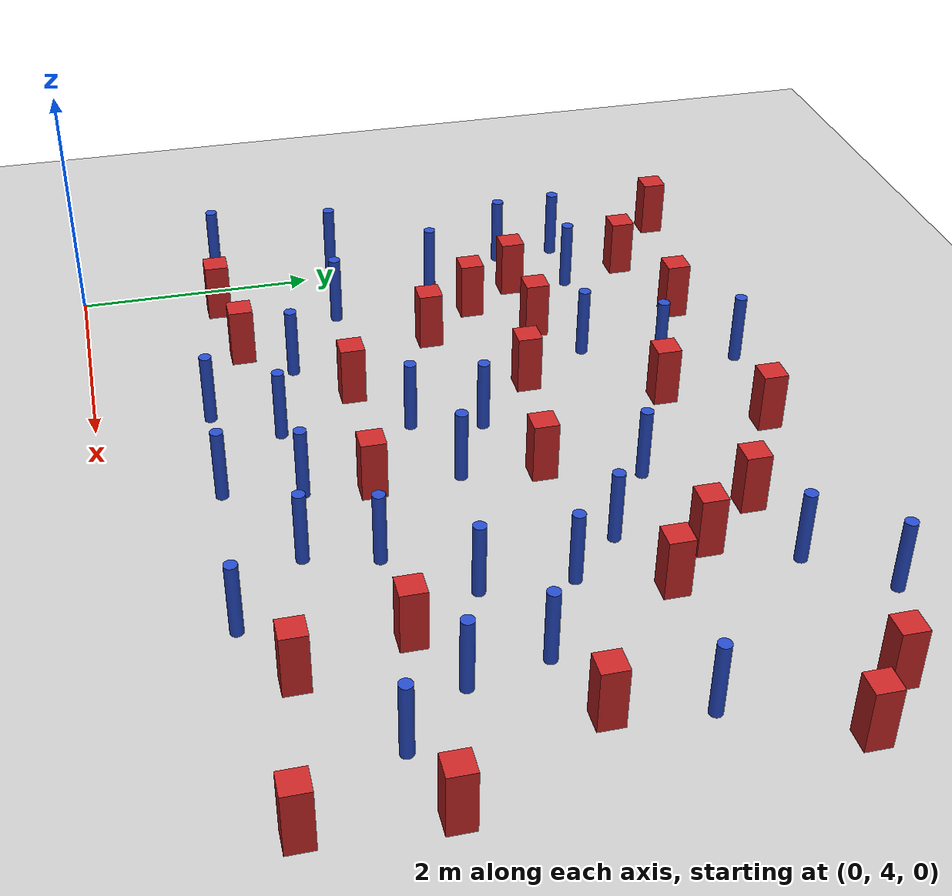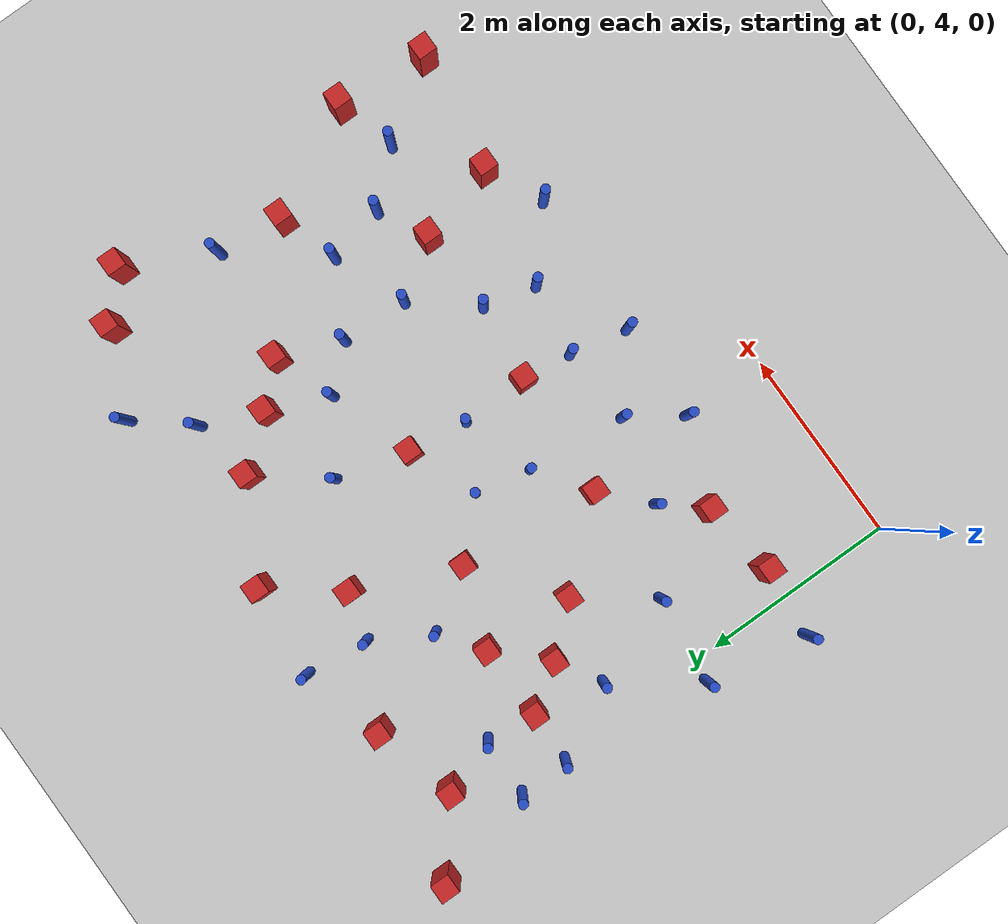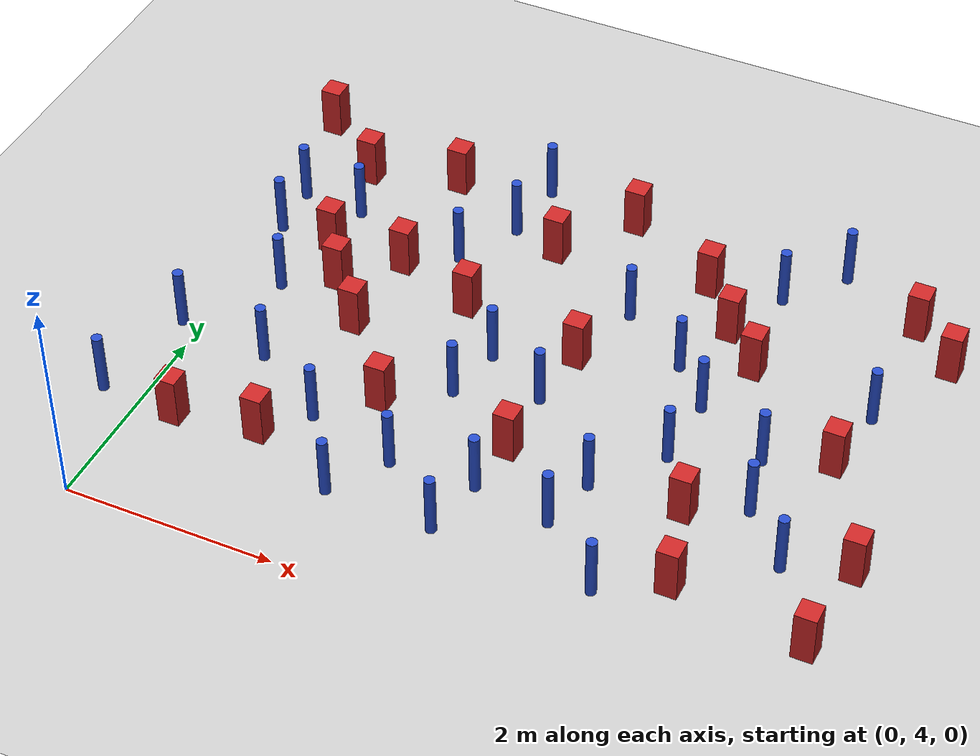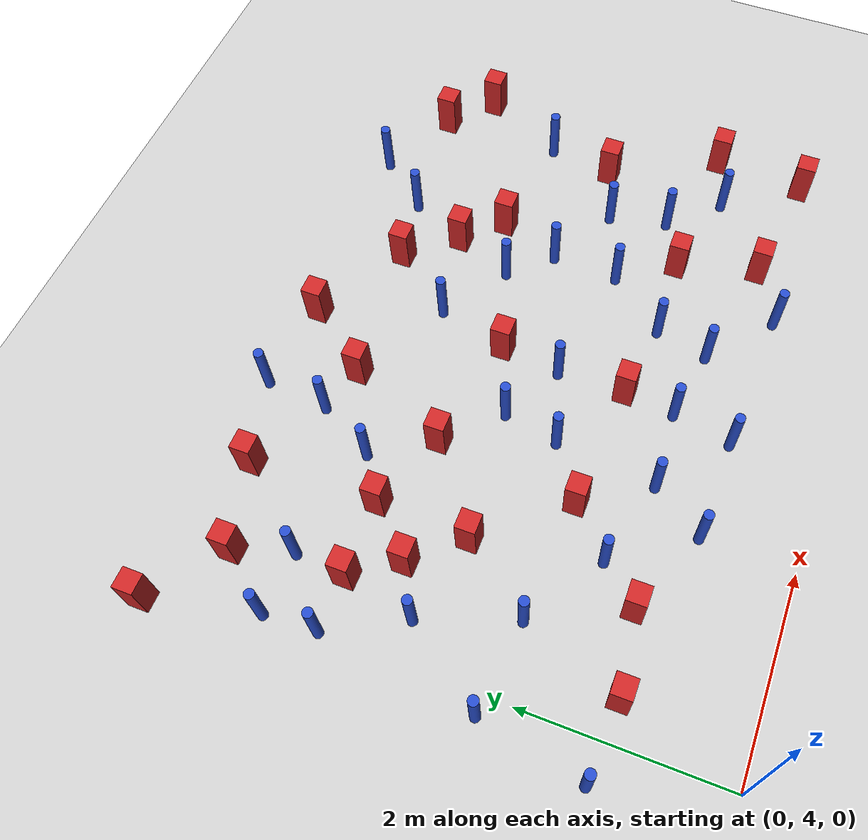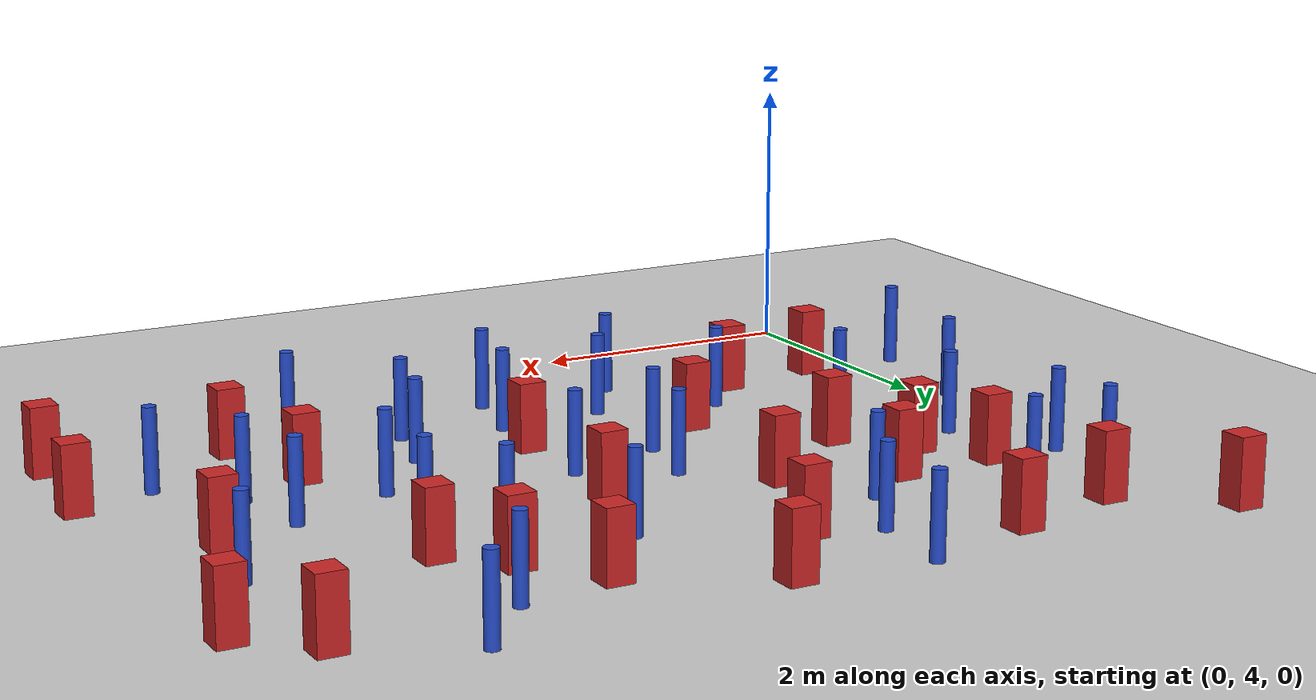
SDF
<sdf version="1.6">
 <world name="default">
  <model name="ground_plane">
   <static>1</static>
   <link name="link">
    <collision name="collision">
     <geometry><plane><normal>0 0 1</normal><size>100 100</size></plane></geometry>
     <surface><friction><ode><mu>100</mu><mu2>50</mu2></ode></friction></surface>
    </collision>
    <visual name="visual">
     <cast_shadows>0</cast_shadows>
     <geometry><plane><normal>0 0 1</normal><size>100 100</size></plane></geometry>
     <material>
      <ambient>1.0 1.0 1.0 1.0</ambient>
      <diffuse>0.8 0.8 0.8 1.0</diffuse>
      <specular>0.01 0.01 0.01 1.000000</specular>
     </material>
    </visual>
   </link>
  </model>
  <model name="square_post_obstacle15">
   <static>true</static>
   <pose>0.376676240564 5.16645294007 -6.11067671241e-07 -5.50515727128e-06 -8.79689657224e-07 2.37013304536e-05</pose>
   <link name="link">
    <pose>0 0 0.25 0 -0 0</pose>
    <inertial>
     <mass>100</mass>
     <inertia>
      <ixx>0.166667</ixx>
      <ixy>0</ixy>
      <ixz>0</ixz>
      <iyy>0.166667</iyy>
      <iyz>0</iyz>
      <izz>0.166667</izz>
     </inertia>
    </inertial>
    <collision name="collision"><geometry><box><size>.2 .2 .5</size></box></geometry></collision>
    <visual name="visual">
     <geometry><box><size>.2 .2 .5</size></box></geometry>
     <material>
      <script><name>Gazebo/Red</name><uri>file://media/materials/scripts/gazebo.material</uri></script>
     </material>
    </visual>
   </link>
  </model>
  <model name="pole_obstacle17">
   <static>true</static>
   <pose>2.04898623751 8.7162139419 -9.4761961606e-06 5.49618799729e-07 2.36310414007e-07 -1.5509053482e-07</pose>
   <link name="link">
    <pose>0 0 0.3 0 -0 0</pose>
    <inertial>
     <mass>1</mass>
     <inertia><ixx>0.145833</ixx><ixy>0</ixy><ixz>0</ixz><iyy>0.145833</iyy><iyz>0</iyz><izz>0.125</izz></inertia>
    </inertial>
    <collision name="collision">
     <geometry><cylinder><radius>0.05</radius><length>.6</length></cylinder></geometry>
    </collision>
    <visual name="visual">
     <geometry><cylinder><radius>0.05</radius><length>.6</length></cylinder></geometry>
     <material>
      <script><name>Gazebo/Blue</name><uri>file://media/materials/scripts/gazebo.material</uri></script>
     </material>
    </visual>
   </link>
  </model>
  <model name="square_post_obstacle27">
   <static>true</static>
   <pose>1.27030081511 9.11007338027 -6.11067671241e-07 -5.50515727128e-06 -8.79689657224e-07 2.37013304536e-05</pose>
   <link name="link">
    <pose>0 0 0.25 0 -0 0</pose>
    <inertial>
     <mass>100</mass>
     <inertia>
      <ixx>0.166667</ixx>
      <ixy>0</ixy>
      <ixz>0</ixz>
      <iyy>0.166667</iyy>
      <iyz>0</iyz>
      <izz>0.166667</izz>
     </inertia>
    </inertial>
    <collision name="collision"><geometry><box><size>.2 .2 .5</size></box></geometry></collision>
    <visual name="visual">
     <geometry><box><size>.2 .2 .5</size></box></geometry>
     <material>
      <script><name>Gazebo/Red</name><uri>file://media/materials/scripts/gazebo.material</uri></script>
     </material>
    </visual>
   </link>
  </model>
  <model name="pole_obstacle25">
   <static>true</static>
   <pose>4.18027340639 7.61826991647 -9.47619616065e-06 5.49618799737e-07 2.36310414037e-07 -1.55090534814e-07</pose>
   <link name="link">
    <pose>0 0 0.3 0 -0 0</pose>
    <inertial>
     <mass>1</mass>
     <inertia><ixx>0.145833</ixx><ixy>0</ixy><ixz>0</ixz><iyy>0.145833</iyy><iyz>0</iyz><izz>0.125</izz></inertia>
    </inertial>
    <collision name="collision">
     <geometry><cylinder><radius>0.05</radius><length>.6</length></cylinder></geometry>
    </collision>
    <visual name="visual">
     <geometry><cylinder><radius>0.05</radius><length>.6</length></cylinder></geometry>
     <material>
      <script><name>Gazebo/Blue</name><uri>file://media/materials/scripts/gazebo.material</uri></script>
     </material>
    </visual>
   </link>
  </model>
  <model name="pole_obstacle26">
   <static>true</static>
   <pose>3.16374248313 5.49320717456 -9.47619616065e-06 5.49618799738e-07 2.3631041406e-07 -1.55090534801e-07</pose>
   <link name="link">
    <pose>0 0 0.3 0 -0 0</pose>
    <inertial>
     <mass>1</mass>
     <inertia><ixx>0.145833</ixx><ixy>0</ixy><ixz>0</ixz><iyy>0.145833</iyy><iyz>0</iyz><izz>0.125</izz></inertia>
    </inertial>
    <collision name="collision">
     <geometry><cylinder><radius>0.05</radius><length>.6</length></cylinder></geometry>
    </collision>
    <visual name="visual">
     <geometry><cylinder><radius>0.05</radius><length>.6</length></cylinder></geometry>
     <material>
      <script><name>Gazebo/Blue</name><uri>file://media/materials/scripts/gazebo.material</uri></script>
     </material>
    </visual>
   </link>
  </model>
  <model name="pole_obstacle36">
   <static>true</static>
   <pose>4.52407594604 6.51466921869 -9.47619616065e-06 5.49618799737e-07 2.36310414037e-07 -1.55090534814e-07</pose>
   <link name="link">
    <pose>0 0 0.3 0 -0 0</pose>
    <inertial>
     <mass>1</mass>
     <inertia><ixx>0.145833</ixx><ixy>0</ixy><ixz>0</ixz><iyy>0.145833</iyy><iyz>0</iyz><izz>0.125</izz></inertia>
    </inertial>
    <collision name="collision">
     <geometry><cylinder><radius>0.05</radius><length>.6</length></cylinder></geometry>
    </collision>
    <visual name="visual">
     <geometry><cylinder><radius>0.05</radius><length>.6</length></cylinder></geometry>
     <material>
      <script><name>Gazebo/Blue</name><uri>file://media/materials/scripts/gazebo.material</uri></script>
     </material>
    </visual>
   </link>
  </model>
  <model name="pole_obstacle39">
   <static>true</static>
   <pose>0.392476861966 7.08885931811 -9.47619616065e-06 5.49618799737e-07 2.36310414065e-07 -1.55090534796e-07</pose>
   <link name="link">
    <pose>0 0 0.3 0 -0 0</pose>
    <inertial>
     <mass>1</mass>
     <inertia><ixx>0.145833</ixx><ixy>0</ixy><ixz>0</ixz><iyy>0.145833</iyy><iyz>0</iyz><izz>0.125</izz></inertia>
    </inertial>
    <collision name="collision">
     <geometry><cylinder><radius>0.05</radius><length>.6</length></cylinder></geometry>
    </collision>
    <visual name="visual">
     <geometry><cylinder><radius>0.05</radius><length>.6</length></cylinder></geometry>
     <material>
      <script><name>Gazebo/Blue</name><uri>file://media/materials/scripts/gazebo.material</uri></script>
     </material>
    </visual>
   </link>
  </model>
  <model name="pole_obstacle47">
   <static>true</static>
   <pose>4.54593493331 4.82354056204 -9.47619616065e-06 5.49618799737e-07 2.36310414037e-07 -1.55090534814e-07</pose>
   <link name="link">
    <pose>0 0 0.3 0 -0 0</pose>
    <inertial>
     <mass>1</mass>
     <inertia><ixx>0.145833</ixx><ixy>0</ixy><ixz>0</ixz><iyy>0.145833</iyy><iyz>0</iyz><izz>0.125</izz></inertia>
    </inertial>
    <collision name="collision">
     <geometry><cylinder><radius>0.05</radius><length>.6</length></cylinder></geometry>
    </collision>
    <visual name="visual">
     <geometry><cylinder><radius>0.05</radius><length>.6</length></cylinder></geometry>
     <material>
      <script><name>Gazebo/Blue</name><uri>file://media/materials/scripts/gazebo.material</uri></script>
     </material>
    </visual>
   </link>
  </model>
  <model name="pole_obstacle48">
   <static>true</static>
   <pose>4.70044250642 8.84747709764 -9.47619616065e-06 5.49618799737e-07 2.36310414065e-07 -1.55090534796e-07</pose>
   <link name="link">
    <pose>0 0 0.3 0 -0 0</pose>
    <inertial>
     <mass>1</mass>
     <inertia><ixx>0.145833</ixx><ixy>0</ixy><ixz>0</ixz><iyy>0.145833</iyy><iyz>0</iyz><izz>0.125</izz></inertia>
    </inertial>
    <collision name="collision">
     <geometry><cylinder><radius>0.05</radius><length>.6</length></cylinder></geometry>
    </collision>
    <visual name="visual">
     <geometry><cylinder><radius>0.05</radius><length>.6</length></cylinder></geometry>
     <material>
      <script><name>Gazebo/Blue</name><uri>file://media/materials/scripts/gazebo.material</uri></script>
     </material>
    </visual>
   </link>
  </model>
  <model name="square_post_obstacle59">
   <static>true</static>
   <pose>0.415309586257 8.87681084428 -6.11067671241e-07 -5.50515727128e-06 -8.79689657224e-07 2.37013304536e-05</pose>
   <link name="link">
    <pose>0 0 0.25 0 -0 0</pose>
    <inertial>
     <mass>100</mass>
     <inertia>
      <ixx>0.166667</ixx>
      <ixy>0</ixy>
      <ixz>0</ixz>
      <iyy>0.166667</iyy>
      <iyz>0</iyz>
      <izz>0.166667</izz>
     </inertia>
    </inertial>
    <collision name="collision"><geometry><box><size>.2 .2 .5</size></box></geometry></collision>
    <visual name="visual">
     <geometry><box><size>.2 .2 .5</size></box></geometry>
     <material>
      <script><name>Gazebo/Red</name><uri>file://media/materials/scripts/gazebo.material</uri></script>
     </material>
    </visual>
   </link>
  </model>
  <model name="square_post_obstacle62">
   <static>true</static>
   <pose>4.42375648086 8.22661889013 -6.11067671241e-07 -5.50515727128e-06 -8.79689657224e-07 2.37013304536e-05</pose>
   <link name="link">
    <pose>0 0 0.25 0 -0 0</pose>
    <inertial>
     <mass>100</mass>
     <inertia>
      <ixx>0.166667</ixx>
      <ixy>0</ixy>
      <ixz>0</ixz>
      <iyy>0.166667</iyy>
      <iyz>0</iyz>
      <izz>0.166667</izz>
     </inertia>
    </inertial>
    <collision name="collision"><geometry><box><size>.2 .2 .5</size></box></geometry></collision>
    <visual name="visual">
     <geometry><box><size>.2 .2 .5</size></box></geometry>
     <material>
      <script><name>Gazebo/Red</name><uri>file://media/materials/scripts/gazebo.material</uri></script>
     </material>
    </visual>
   </link>
  </model>
  <model name="square_post_obstacle66">
   <static>true</static>
   <pose>5.86790818103 7.01417542503 -6.11067671241e-07 -5.50515727128e-06 -8.79689657224e-07 2.37013304536e-05</pose>
   <link name="link">
    <pose>0 0 0.25 0 -0 0</pose>
    <inertial>
     <mass>100</mass>
     <inertia>
      <ixx>0.166667</ixx>
      <ixy>0</ixy>
      <ixz>0</ixz>
      <iyy>0.166667</iyy>
      <iyz>0</iyz>
      <izz>0.166667</izz>
     </inertia>
    </inertial>
    <collision name="collision"><geometry><box><size>.2 .2 .5</size></box></geometry></collision>
    <visual name="visual">
     <geometry><box><size>.2 .2 .5</size></box></geometry>
     <material>
      <script><name>Gazebo/Red</name><uri>file://media/materials/scripts/gazebo.material</uri></script>
     </material>
    </visual>
   </link>
  </model>
  <model name="square_post_obstacle73">
   <static>true</static>
   <pose>3.06616050105 9.25791936694 -6.11067671241e-07 -5.50515727128e-06 -8.79689657224e-07 2.37013304536e-05</pose>
   <link name="link">
    <pose>0 0 0.25 0 -0 0</pose>
    <inertial>
     <mass>100</mass>
     <inertia>
      <ixx>0.166667</ixx>
      <ixy>0</ixy>
      <ixz>0</ixz>
      <iyy>0.166667</iyy>
      <iyz>0</iyz>
      <izz>0.166667</izz>
     </inertia>
    </inertial>
    <collision name="collision"><geometry><box><size>.2 .2 .5</size></box></geometry></collision>
    <visual name="visual">
     <geometry><box><size>.2 .2 .5</size></box></geometry>
     <material>
      <script><name>Gazebo/Red</name><uri>file://media/materials/scripts/gazebo.material</uri></script>
     </material>
    </visual>
   </link>
  </model>
  <model name="square_post_obstacle75">
   <static>true</static>
   <pose>1.3078661224 7.81738381087 -6.11067671241e-07 -5.50515727128e-06 -8.79689657224e-07 2.37013304536e-05</pose>
   <link name="link">
    <pose>0 0 0.25 0 -0 0</pose>
    <inertial>
     <mass>100</mass>
     <inertia>
      <ixx>0.166667</ixx>
      <ixy>0</ixy>
      <ixz>0</ixz>
      <iyy>0.166667</iyy>
      <iyz>0</iyz>
      <izz>0.166667</izz>
     </inertia>
    </inertial>
    <collision name="collision"><geometry><box><size>.2 .2 .5</size></box></geometry></collision>
    <visual name="visual">
     <geometry><box><size>.2 .2 .5</size></box></geometry>
     <material>
      <script><name>Gazebo/Red</name><uri>file://media/materials/scripts/gazebo.material</uri></script>
     </material>
    </visual>
   </link>
  </model>
  <model name="square_post_obstacle78">
   <static>true</static>
   <pose>2.10274140308 7.52908039276 -6.11067671241e-07 -5.50515727128e-06 -8.79689657224e-07 2.37013304536e-05</pose>
   <link name="link">
    <pose>0 0 0.25 0 -0 0</pose>
    <inertial>
     <mass>100</mass>
     <inertia>
      <ixx>0.166667</ixx>
      <ixy>0</ixy>
      <ixz>0</ixz>
      <iyy>0.166667</iyy>
      <iyz>0</iyz>
      <izz>0.166667</izz>
     </inertia>
    </inertial>
    <collision name="collision"><geometry><box><size>.2 .2 .5</size></box></geometry></collision>
    <visual name="visual">
     <geometry><box><size>.2 .2 .5</size></box></geometry>
     <material>
      <script><name>Gazebo/Red</name><uri>file://media/materials/scripts/gazebo.material</uri></script>
     </material>
    </visual>
   </link>
  </model>
  <model name="pole_obstacle91">
   <static>true</static>
   <pose>1.49296255642 5.66907580595 -9.47619616065e-06 5.49618799737e-07 2.36310414061e-07 -1.550905348e-07</pose>
   <link name="link">
    <pose>0 0 0.3 0 -0 0</pose>
    <inertial>
     <mass>1</mass>
     <inertia><ixx>0.145833</ixx><ixy>0</ixy><ixz>0</ixz><iyy>0.145833</iyy><iyz>0</iyz><izz>0.125</izz></inertia>
    </inertial>
    <collision name="collision">
     <geometry><cylinder><radius>0.05</radius><length>.6</length></cylinder></geometry>
    </collision>
    <visual name="visual">
     <geometry><cylinder><radius>0.05</radius><length>.6</length></cylinder></geometry>
     <material>
      <script><name>Gazebo/Blue</name><uri>file://media/materials/scripts/gazebo.material</uri></script>
     </material>
    </visual>
   </link>
  </model>
  <model name="square_post_obstacle86">
   <static>true</static>
   <pose>1.26658289816 6.88722565381 -6.11067671241e-07 -5.50515727128e-06 -8.79689657224e-07 2.37013304536e-05</pose>
   <link name="link">
    <pose>0 0 0.25 0 -0 0</pose>
    <inertial>
     <mass>100</mass>
     <inertia>
      <ixx>0.166667</ixx>
      <ixy>0</ixy>
      <ixz>0</ixz>
      <iyy>0.166667</iyy>
      <iyz>0</iyz>
      <izz>0.166667</izz>
     </inertia>
    </inertial>
    <collision name="collision"><geometry><box><size>.2 .2 .5</size></box></geometry></collision>
    <visual name="visual">
     <geometry><box><size>.2 .2 .5</size></box></geometry>
     <material>
      <script><name>Gazebo/Red</name><uri>file://media/materials/scripts/gazebo.material</uri></script>
     </material>
    </visual>
   </link>
  </model>
  <model name="pole_obstacle102">
   <static>true</static>
   <pose>0.725159996272 6.16797189275 -9.47619616065e-06 5.49618799737e-07 2.36310414065e-07 -1.55090534796e-07</pose>
   <link name="link">
    <pose>0 0 0.3 0 -0 0</pose>
    <inertial>
     <mass>1</mass>
     <inertia><ixx>0.145833</ixx><ixy>0</ixy><ixz>0</ixz><iyy>0.145833</iyy><iyz>0</iyz><izz>0.125</izz></inertia>
    </inertial>
    <collision name="collision">
     <geometry><cylinder><radius>0.05</radius><length>.6</length></cylinder></geometry>
    </collision>
    <visual name="visual">
     <geometry><cylinder><radius>0.05</radius><length>.6</length></cylinder></geometry>
     <material>
      <script><name>Gazebo/Blue</name><uri>file://media/materials/scripts/gazebo.material</uri></script>
     </material>
    </visual>
   </link>
  </model>
  <model name="pole_obstacle103">
   <static>true</static>
   <pose>3.90636634134 5.37039415428 -9.47619616065e-06 5.49618799738e-07 2.3631041406e-07 -1.55090534801e-07</pose>
   <link name="link">
    <pose>0 0 0.3 0 -0 0</pose>
    <inertial>
     <mass>1</mass>
     <inertia><ixx>0.145833</ixx><ixy>0</ixy><ixz>0</ixz><iyy>0.145833</iyy><iyz>0</iyz><izz>0.125</izz></inertia>
    </inertial>
    <collision name="collision">
     <geometry><cylinder><radius>0.05</radius><length>.6</length></cylinder></geometry>
    </collision>
    <visual name="visual">
     <geometry><cylinder><radius>0.05</radius><length>.6</length></cylinder></geometry>
     <material>
      <script><name>Gazebo/Blue</name><uri>file://media/materials/scripts/gazebo.material</uri></script>
     </material>
    </visual>
   </link>
  </model>
  <model name="pole_obstacle106">
   <static>true</static>
   <pose>5.97284830804 7.7079123222 -9.47619616065e-06 5.49618799737e-07 2.36310414037e-07 -1.55090534814e-07</pose>
   <link name="link">
    <pose>0 0 0.3 0 -0 0</pose>
    <inertial>
     <mass>1</mass>
     <inertia><ixx>0.145833</ixx><ixy>0</ixy><ixz>0</ixz><iyy>0.145833</iyy><iyz>0</iyz><izz>0.125</izz></inertia>
    </inertial>
    <collision name="collision">
     <geometry><cylinder><radius>0.05</radius><length>.6</length></cylinder></geometry>
    </collision>
    <visual name="visual">
     <geometry><cylinder><radius>0.05</radius><length>.6</length></cylinder></geometry>
     <material>
      <script><name>Gazebo/Blue</name><uri>file://media/materials/scripts/gazebo.material</uri></script>
     </material>
    </visual>
   </link>
  </model>
  <model name="square_post_obstacle97">
   <static>true</static>
   <pose>6.40246230782 8.57723047443 -6.11067671241e-07 -5.50515727128e-06 -8.79689657224e-07 2.37013304536e-05</pose>
   <link name="link">
    <pose>0 0 0.25 0 -0 0</pose>
    <inertial>
     <mass>100</mass>
     <inertia>
      <ixx>0.166667</ixx>
      <ixy>0</ixy>
      <ixz>0</ixz>
      <iyy>0.166667</iyy>
      <iyz>0</iyz>
      <izz>0.166667</izz>
     </inertia>
    </inertial>
    <collision name="collision"><geometry><box><size>.2 .2 .5</size></box></geometry></collision>
    <visual name="visual">
     <geometry><box><size>.2 .2 .5</size></box></geometry>
     <material>
      <script><name>Gazebo/Red</name><uri>file://media/materials/scripts/gazebo.material</uri></script>
     </material>
    </visual>
   </link>
  </model>
  <model name="pole_obstacle110">
   <static>true</static>
   <pose>1.72555358135 8.12874197238 -9.47619616065e-06 5.49618799737e-07 2.36310414046e-07 -1.55090534809e-07</pose>
   <link name="link">
    <pose>0 0 0.3 0 -0 0</pose>
    <inertial>
     <mass>1</mass>
     <inertia><ixx>0.145833</ixx><ixy>0</ixy><ixz>0</ixz><iyy>0.145833</iyy><iyz>0</iyz><izz>0.125</izz></inertia>
    </inertial>
    <collision name="collision">
     <geometry><cylinder><radius>0.05</radius><length>.6</length></cylinder></geometry>
    </collision>
    <visual name="visual">
     <geometry><cylinder><radius>0.05</radius><length>.6</length></cylinder></geometry>
     <material>
      <script><name>Gazebo/Blue</name><uri>file://media/materials/scripts/gazebo.material</uri></script>
     </material>
    </visual>
   </link>
  </model>
  <model name="pole_obstacle116">
   <static>true</static>
   <pose>2.47612854099 6.467197018 -9.47619616065e-06 5.49618799738e-07 2.3631041406e-07 -1.55090534801e-07</pose>
   <link name="link">
    <pose>0 0 0.3 0 -0 0</pose>
    <inertial>
     <mass>1</mass>
     <inertia><ixx>0.145833</ixx><ixy>0</ixy><ixz>0</ixz><iyy>0.145833</iyy><iyz>0</iyz><izz>0.125</izz></inertia>
    </inertial>
    <collision name="collision">
     <geometry><cylinder><radius>0.05</radius><length>.6</length></cylinder></geometry>
    </collision>
    <visual name="visual">
     <geometry><cylinder><radius>0.05</radius><length>.6</length></cylinder></geometry>
     <material>
      <script><name>Gazebo/Blue</name><uri>file://media/materials/scripts/gazebo.material</uri></script>
     </material>
    </visual>
   </link>
  </model>
  <model name="pole_obstacle117">
   <static>true</static>
   <pose>-0.183160475237 6.26896266439 -9.47619616065e-06 5.49618799738e-07 2.36310414064e-07 -1.55090534799e-07</pose>
   <link name="link">
    <pose>0 0 0.3 0 -0 0</pose>
    <inertial>
     <mass>1</mass>
     <inertia><ixx>0.145833</ixx><ixy>0</ixy><ixz>0</ixz><iyy>0.145833</iyy><iyz>0</iyz><izz>0.125</izz></inertia>
    </inertial>
    <collision name="collision">
     <geometry><cylinder><radius>0.05</radius><length>.6</length></cylinder></geometry>
    </collision>
    <visual name="visual">
     <geometry><cylinder><radius>0.05</radius><length>.6</length></cylinder></geometry>
     <material>
      <script><name>Gazebo/Blue</name><uri>file://media/materials/scripts/gazebo.material</uri></script>
     </material>
    </visual>
   </link>
  </model>
  <model name="square_post_obstacle112">
   <static>true</static>
   <pose>0.556907643015 7.79763329473 -6.11067671241e-07 -5.50515727128e-06 -8.79689657224e-07 2.37013304536e-05</pose>
   <link name="link">
    <pose>0 0 0.25 0 -0 0</pose>
    <inertial>
     <mass>100</mass>
     <inertia>
      <ixx>0.166667</ixx>
      <ixy>0</ixy>
      <ixz>0</ixz>
      <iyy>0.166667</iyy>
      <iyz>0</iyz>
      <izz>0.166667</izz>
     </inertia>
    </inertial>
    <collision name="collision"><geometry><box><size>.2 .2 .5</size></box></geometry></collision>
    <visual name="visual">
     <geometry><box><size>.2 .2 .5</size></box></geometry>
     <material>
      <script><name>Gazebo/Red</name><uri>file://media/materials/scripts/gazebo.material</uri></script>
     </material>
    </visual>
   </link>
  </model>
  <model name="square_post_obstacle114">
   <static>true</static>
   <pose>4.02158834882 8.72413483806 -6.11067671241e-07 -5.50515727128e-06 -8.79689657224e-07 2.37013304536e-05</pose>
   <link name="link">
    <pose>0 0 0.25 0 -0 0</pose>
    <inertial>
     <mass>100</mass>
     <inertia>
      <ixx>0.166667</ixx>
      <ixy>0</ixy>
      <ixz>0</ixz>
      <iyy>0.166667</iyy>
      <iyz>0</iyz>
      <izz>0.166667</izz>
     </inertia>
    </inertial>
    <collision name="collision"><geometry><box><size>.2 .2 .5</size></box></geometry></collision>
    <visual name="visual">
     <geometry><box><size>.2 .2 .5</size></box></geometry>
     <material>
      <script><name>Gazebo/Red</name><uri>file://media/materials/scripts/gazebo.material</uri></script>
     </material>
    </visual>
   </link>
  </model>
  <model name="pole_obstacle135">
   <static>true</static>
   <pose>3.50395691978 8.06282033784 -9.4761961606e-06 5.49618799729e-07 2.36310414e-07 -1.55090534824e-07</pose>
   <link name="link">
    <pose>0 0 0.3 0 -0 0</pose>
    <inertial>
     <mass>1</mass>
     <inertia><ixx>0.145833</ixx><ixy>0</ixy><ixz>0</ixz><iyy>0.145833</iyy><iyz>0</iyz><izz>0.125</izz></inertia>
    </inertial>
    <collision name="collision">
     <geometry><cylinder><radius>0.05</radius><length>.6</length></cylinder></geometry>
    </collision>
    <visual name="visual">
     <geometry><cylinder><radius>0.05</radius><length>.6</length></cylinder></geometry>
     <material>
      <script><name>Gazebo/Blue</name><uri>file://media/materials/scripts/gazebo.material</uri></script>
     </material>
    </visual>
   </link>
  </model>
  <model name="square_post_obstacle123">
   <static>true</static>
   <pose>3.29875991441 7.32074427327 -6.11067671241e-07 -5.50515727128e-06 -8.79689657224e-07 2.37013304536e-05</pose>
   <link name="link">
    <pose>0 0 0.25 0 -0 0</pose>
    <inertial>
     <mass>100</mass>
     <inertia>
      <ixx>0.166667</ixx>
      <ixy>0</ixy>
      <ixz>0</ixz>
      <iyy>0.166667</iyy>
      <iyz>0</iyz>
      <izz>0.166667</izz>
     </inertia>
    </inertial>
    <collision name="collision"><geometry><box><size>.2 .2 .5</size></box></geometry></collision>
    <visual name="visual">
     <geometry><box><size>.2 .2 .5</size></box></geometry>
     <material>
      <script><name>Gazebo/Red</name><uri>file://media/materials/scripts/gazebo.material</uri></script>
     </material>
    </visual>
   </link>
  </model>
  <model name="square_post_obstacle125">
   <static>true</static>
   <pose>4.89404222694 5.95621531816 -6.11067671241e-07 -5.50515727128e-06 -8.79689657224e-07 2.37013304536e-05</pose>
   <link name="link">
    <pose>0 0 0.25 0 -0 0</pose>
    <inertial>
     <mass>100</mass>
     <inertia>
      <ixx>0.166667</ixx>
      <ixy>0</ixy>
      <ixz>0</ixz>
      <iyy>0.166667</iyy>
      <iyz>0</iyz>
      <izz>0.166667</izz>
     </inertia>
    </inertial>
    <collision name="collision"><geometry><box><size>.2 .2 .5</size></box></geometry></collision>
    <visual name="visual">
     <geometry><box><size>.2 .2 .5</size></box></geometry>
     <material>
      <script><name>Gazebo/Red</name><uri>file://media/materials/scripts/gazebo.material</uri></script>
     </material>
    </visual>
   </link>
  </model>
  <model name="square_post_obstacle129">
   <static>true</static>
   <pose>1.16452189136 5.28162440299 -6.11067671241e-07 -5.50515727128e-06 -8.79689657224e-07 2.37013304536e-05</pose>
   <link name="link">
    <pose>0 0 0.25 0 -0 0</pose>
    <inertial>
     <mass>100</mass>
     <inertia>
      <ixx>0.166667</ixx>
      <ixy>0</ixy>
      <ixz>0</ixz>
      <iyy>0.166667</iyy>
      <iyz>0</iyz>
      <izz>0.166667</izz>
     </inertia>
    </inertial>
    <collision name="collision"><geometry><box><size>.2 .2 .5</size></box></geometry></collision>
    <visual name="visual">
     <geometry><box><size>.2 .2 .5</size></box></geometry>
     <material>
      <script><name>Gazebo/Red</name><uri>file://media/materials/scripts/gazebo.material</uri></script>
     </material>
    </visual>
   </link>
  </model>
  <model name="pole_obstacle147">
   <static>true</static>
   <pose>3.04115924577 4.89383703438 -9.47619616065e-06 5.49618799738e-07 2.3631041406e-07 -1.55090534801e-07</pose>
   <link name="link">
    <pose>0 0 0.3 0 -0 0</pose>
    <inertial>
     <mass>1</mass>
     <inertia><ixx>0.145833</ixx><ixy>0</ixy><ixz>0</ixz><iyy>0.145833</iyy><iyz>0</iyz><izz>0.125</izz></inertia>
    </inertial>
    <collision name="collision">
     <geometry><cylinder><radius>0.05</radius><length>.6</length></cylinder></geometry>
    </collision>
    <visual name="visual">
     <geometry><cylinder><radius>0.05</radius><length>.6</length></cylinder></geometry>
     <material>
      <script><name>Gazebo/Blue</name><uri>file://media/materials/scripts/gazebo.material</uri></script>
     </material>
    </visual>
   </link>
  </model>
  <model name="pole_obstacle151">
   <static>true</static>
   <pose>4.55570656747 7.2084754902 -9.47619616065e-06 5.49618799737e-07 2.36310414037e-07 -1.55090534814e-07</pose>
   <link name="link">
    <pose>0 0 0.3 0 -0 0</pose>
    <inertial>
     <mass>1</mass>
     <inertia><ixx>0.145833</ixx><ixy>0</ixy><ixz>0</ixz><iyy>0.145833</iyy><iyz>0</iyz><izz>0.125</izz></inertia>
    </inertial>
    <collision name="collision">
     <geometry><cylinder><radius>0.05</radius><length>.6</length></cylinder></geometry>
    </collision>
    <visual name="visual">
     <geometry><cylinder><radius>0.05</radius><length>.6</length></cylinder></geometry>
     <material>
      <script><name>Gazebo/Blue</name><uri>file://media/materials/scripts/gazebo.material</uri></script>
     </material>
    </visual>
   </link>
  </model>
  <model name="pole_obstacle156">
   <static>true</static>
   <pose>5.14468986267 9.38275630564 -9.47619616065e-06 5.49618799737e-07 2.36310414065e-07 -1.55090534796e-07</pose>
   <link name="link">
    <pose>0 0 0.3 0 -0 0</pose>
    <inertial>
     <mass>1</mass>
     <inertia><ixx>0.145833</ixx><ixy>0</ixy><ixz>0</ixz><iyy>0.145833</iyy><iyz>0</iyz><izz>0.125</izz></inertia>
    </inertial>
    <collision name="collision">
     <geometry><cylinder><radius>0.05</radius><length>.6</length></cylinder></geometry>
    </collision>
    <visual name="visual">
     <geometry><cylinder><radius>0.05</radius><length>.6</length></cylinder></geometry>
     <material>
      <script><name>Gazebo/Blue</name><uri>file://media/materials/scripts/gazebo.material</uri></script>
     </material>
    </visual>
   </link>
  </model>
  <model name="pole_obstacle162">
   <static>true</static>
   <pose>2.01801535871 4.91702935312 -9.47619616065e-06 5.49618799737e-07 2.36310414059e-07 -1.55090534802e-07</pose>
   <link name="link">
    <pose>0 0 0.3 0 -0 0</pose>
    <inertial>
     <mass>1</mass>
     <inertia><ixx>0.145833</ixx><ixy>0</ixy><ixz>0</ixz><iyy>0.145833</iyy><iyz>0</iyz><izz>0.125</izz></inertia>
    </inertial>
    <collision name="collision">
     <geometry><cylinder><radius>0.05</radius><length>.6</length></cylinder></geometry>
    </collision>
    <visual name="visual">
     <geometry><cylinder><radius>0.05</radius><length>.6</length></cylinder></geometry>
     <material>
      <script><name>Gazebo/Blue</name><uri>file://media/materials/scripts/gazebo.material</uri></script>
     </material>
    </visual>
   </link>
  </model>
  <model name="pole_obstacle164">
   <static>true</static>
   <pose>2.59745972514 7.03409092112 -9.47619616065e-06 5.49618799738e-07 2.3631041406e-07 -1.55090534801e-07</pose>
   <link name="link">
    <pose>0 0 0.3 0 -0 0</pose>
    <inertial>
     <mass>1</mass>
     <inertia><ixx>0.145833</ixx><ixy>0</ixy><ixz>0</ixz><iyy>0.145833</iyy><iyz>0</iyz><izz>0.125</izz></inertia>
    </inertial>
    <collision name="collision">
     <geometry><cylinder><radius>0.05</radius><length>.6</length></cylinder></geometry>
    </collision>
    <visual name="visual">
     <geometry><cylinder><radius>0.05</radius><length>.6</length></cylinder></geometry>
     <material>
      <script><name>Gazebo/Blue</name><uri>file://media/materials/scripts/gazebo.material</uri></script>
     </material>
    </visual>
   </link>
  </model>
  <model name="pole_obstacle166">
   <static>true</static>
   <pose>5.27708314897 6.81696112535 -9.47619616065e-06 5.49618799737e-07 2.36310414037e-07 -1.55090534814e-07</pose>
   <link name="link">
    <pose>0 0 0.3 0 -0 0</pose>
    <inertial>
     <mass>1</mass>
     <inertia><ixx>0.145833</ixx><ixy>0</ixy><ixz>0</ixz><iyy>0.145833</iyy><iyz>0</iyz><izz>0.125</izz></inertia>
    </inertial>
    <collision name="collision">
     <geometry><cylinder><radius>0.05</radius><length>.6</length></cylinder></geometry>
    </collision>
    <visual name="visual">
     <geometry><cylinder><radius>0.05</radius><length>.6</length></cylinder></geometry>
     <material>
      <script><name>Gazebo/Blue</name><uri>file://media/materials/scripts/gazebo.material</uri></script>
     </material>
    </visual>
   </link>
  </model>
  <model name="square_post_obstacle163">
   <static>true</static>
   <pose>2.53602129301 8.56776468614 -6.11067671241e-07 -5.50515727128e-06 -8.79689657224e-07 2.37013304536e-05</pose>
   <link name="link">
    <pose>0 0 0.25 0 -0 0</pose>
    <inertial>
     <mass>100</mass>
     <inertia>
      <ixx>0.166667</ixx>
      <ixy>0</ixy>
      <ixz>0</ixz>
      <iyy>0.166667</iyy>
      <iyz>0</iyz>
      <izz>0.166667</izz>
     </inertia>
    </inertial>
    <collision name="collision"><geometry><box><size>.2 .2 .5</size></box></geometry></collision>
    <visual name="visual">
     <geometry><box><size>.2 .2 .5</size></box></geometry>
     <material>
      <script><name>Gazebo/Red</name><uri>file://media/materials/scripts/gazebo.material</uri></script>
     </material>
    </visual>
   </link>
  </model>
  <model name="square_post_obstacle166">
   <static>true</static>
   <pose>6.45187634269 5.90524605147 -6.11067671241e-07 -5.50515727128e-06 -8.79689657224e-07 2.37013304536e-05</pose>
   <link name="link">
    <pose>0 0 0.25 0 -0 0</pose>
    <inertial>
     <mass>100</mass>
     <inertia>
      <ixx>0.166667</ixx>
      <ixy>0</ixy>
      <ixz>0</ixz>
      <iyy>0.166667</iyy>
      <iyz>0</iyz>
      <izz>0.166667</izz>
     </inertia>
    </inertial>
    <collision name="collision"><geometry><box><size>.2 .2 .5</size></box></geometry></collision>
    <visual name="visual">
     <geometry><box><size>.2 .2 .5</size></box></geometry>
     <material>
      <script><name>Gazebo/Red</name><uri>file://media/materials/scripts/gazebo.material</uri></script>
     </material>
    </visual>
   </link>
  </model>
  <model name="pole_obstacle185">
   <static>true</static>
   <pose>-0.384186009066 5.22004636535 -9.47619616065e-06 5.49618799737e-07 2.36310414065e-07 -1.55090534796e-07</pose>
   <link name="link">
    <pose>0 0 0.3 0 -0 0</pose>
    <inertial>
     <mass>1</mass>
     <inertia><ixx>0.145833</ixx><ixy>0</ixy><ixz>0</ixz><iyy>0.145833</iyy><iyz>0</iyz><izz>0.125</izz></inertia>
    </inertial>
    <collision name="collision">
     <geometry><cylinder><radius>0.05</radius><length>.6</length></cylinder></geometry>
    </collision>
    <visual name="visual">
     <geometry><cylinder><radius>0.05</radius><length>.6</length></cylinder></geometry>
     <material>
      <script><name>Gazebo/Blue</name><uri>file://media/materials/scripts/gazebo.material</uri></script>
     </material>
    </visual>
   </link>
  </model>
  <model name="pole_obstacle186">
   <static>true</static>
   <pose>5.86611691072 5.71995766866 -9.47619616065e-06 5.49618799737e-07 2.36310414037e-07 -1.55090534814e-07</pose>
   <link name="link">
    <pose>0 0 0.3 0 -0 0</pose>
    <inertial>
     <mass>1</mass>
     <inertia><ixx>0.145833</ixx><ixy>0</ixy><ixz>0</ixz><iyy>0.145833</iyy><iyz>0</iyz><izz>0.125</izz></inertia>
    </inertial>
    <collision name="collision">
     <geometry><cylinder><radius>0.05</radius><length>.6</length></cylinder></geometry>
    </collision>
    <visual name="visual">
     <geometry><cylinder><radius>0.05</radius><length>.6</length></cylinder></geometry>
     <material>
      <script><name>Gazebo/Blue</name><uri>file://media/materials/scripts/gazebo.material</uri></script>
     </material>
    </visual>
   </link>
  </model>
  <model name="square_post_obstacle178">
   <static>true</static>
   <pose>1.94779968548 6.08841151844 -6.11067671241e-07 -5.50515727128e-06 -8.79689657224e-07 2.37013304536e-05</pose>
   <link name="link">
    <pose>0 0 0.25 0 -0 0</pose>
    <inertial>
     <mass>100</mass>
     <inertia>
      <ixx>0.166667</ixx>
      <ixy>0</ixy>
      <ixz>0</ixz>
      <iyy>0.166667</iyy>
      <iyz>0</iyz>
      <izz>0.166667</izz>
     </inertia>
    </inertial>
    <collision name="collision"><geometry><box><size>.2 .2 .5</size></box></geometry></collision>
    <visual name="visual">
     <geometry><box><size>.2 .2 .5</size></box></geometry>
     <material>
      <script><name>Gazebo/Red</name><uri>file://media/materials/scripts/gazebo.material</uri></script>
     </material>
    </visual>
   </link>
  </model>
  <model name="square_post_obstacle185">
   <static>true</static>
   <pose>5.11979032885 5.13381365684 -6.11067671241e-07 -5.50515727128e-06 -8.79689657224e-07 2.37013304536e-05</pose>
   <link name="link">
    <pose>0 0 0.25 0 -0 0</pose>
    <inertial>
     <mass>100</mass>
     <inertia>
      <ixx>0.166667</ixx>
      <ixy>0</ixy>
      <ixz>0</ixz>
      <iyy>0.166667</iyy>
      <iyz>0</iyz>
      <izz>0.166667</izz>
     </inertia>
    </inertial>
    <collision name="collision"><geometry><box><size>.2 .2 .5</size></box></geometry></collision>
    <visual name="visual">
     <geometry><box><size>.2 .2 .5</size></box></geometry>
     <material>
      <script><name>Gazebo/Red</name><uri>file://media/materials/scripts/gazebo.material</uri></script>
     </material>
    </visual>
   </link>
  </model>
  <model name="pole_obstacle195">
   <static>true</static>
   <pose>0.587062725201 8.32031848795 -9.47619616065e-06 5.49618799737e-07 2.36310414038e-07 -1.55090534813e-07</pose>
   <link name="link">
    <pose>0 0 0.3 0 -0 0</pose>
    <inertial>
     <mass>1</mass>
     <inertia><ixx>0.145833</ixx><ixy>0</ixy><ixz>0</ixz><iyy>0.145833</iyy><iyz>0</iyz><izz>0.125</izz></inertia>
    </inertial>
    <collision name="collision">
     <geometry><cylinder><radius>0.05</radius><length>.6</length></cylinder></geometry>
    </collision>
    <visual name="visual">
     <geometry><cylinder><radius>0.05</radius><length>.6</length></cylinder></geometry>
     <material>
      <script><name>Gazebo/Blue</name><uri>file://media/materials/scripts/gazebo.material</uri></script>
     </material>
    </visual>
   </link>
  </model>
  <model name="pole_obstacle196">
   <static>true</static>
   <pose>-0.0242966615288 8.35231030667 -9.47619616065e-06 5.49618799737e-07 2.36310414037e-07 -1.55090534814e-07</pose>
   <link name="link">
    <pose>0 0 0.3 0 -0 0</pose>
    <inertial>
     <mass>1</mass>
     <inertia><ixx>0.145833</ixx><ixy>0</ixy><ixz>0</ixz><iyy>0.145833</iyy><iyz>0</iyz><izz>0.125</izz></inertia>
    </inertial>
    <collision name="collision">
     <geometry><cylinder><radius>0.05</radius><length>.6</length></cylinder></geometry>
    </collision>
    <visual name="visual">
     <geometry><cylinder><radius>0.05</radius><length>.6</length></cylinder></geometry>
     <material>
      <script><name>Gazebo/Blue</name><uri>file://media/materials/scripts/gazebo.material</uri></script>
     </material>
    </visual>
   </link>
  </model>
  <model name="square_post_obstacle190">
   <static>true</static>
   <pose>5.96342279615 8.97265733689 -6.11067671241e-07 -5.50515727128e-06 -8.79689657224e-07 2.37013304536e-05</pose>
   <link name="link">
    <pose>0 0 0.25 0 -0 0</pose>
    <inertial>
     <mass>100</mass>
     <inertia>
      <ixx>0.166667</ixx>
      <ixy>0</ixy>
      <ixz>0</ixz>
      <iyy>0.166667</iyy>
      <iyz>0</iyz>
      <izz>0.166667</izz>
     </inertia>
    </inertial>
    <collision name="collision"><geometry><box><size>.2 .2 .5</size></box></geometry></collision>
    <visual name="visual">
     <geometry><box><size>.2 .2 .5</size></box></geometry>
     <material>
      <script><name>Gazebo/Red</name><uri>file://media/materials/scripts/gazebo.material</uri></script>
     </material>
    </visual>
   </link>
  </model>
  <model name="pole_obstacle198">
   <static>true</static>
   <pose>2.3668417004 5.44198362161 -9.47619616065e-06 5.49618799738e-07 2.3631041406e-07 -1.55090534801e-07</pose>
   <link name="link">
    <pose>0 0 0.3 0 -0 0</pose>
    <inertial>
     <mass>1</mass>
     <inertia><ixx>0.145833</ixx><ixy>0</ixy><ixz>0</ixz><iyy>0.145833</iyy><iyz>0</iyz><izz>0.125</izz></inertia>
    </inertial>
    <collision name="collision">
     <geometry><cylinder><radius>0.05</radius><length>.6</length></cylinder></geometry>
    </collision>
    <visual name="visual">
     <geometry><cylinder><radius>0.05</radius><length>.6</length></cylinder></geometry>
     <material>
      <script><name>Gazebo/Blue</name><uri>file://media/materials/scripts/gazebo.material</uri></script>
     </material>
    </visual>
   </link>
  </model>
  <model name="pole_obstacle202">
   <static>true</static>
   <pose>2.11847822649 9.37058660688 -9.4761961606e-06 5.49618799729e-07 2.36310414e-07 -1.55090534824e-07</pose>
   <link name="link">
    <pose>0 0 0.3 0 -0 0</pose>
    <inertial>
     <mass>1</mass>
     <inertia><ixx>0.145833</ixx><ixy>0</ixy><ixz>0</ixz><iyy>0.145833</iyy><iyz>0</iyz><izz>0.125</izz></inertia>
    </inertial>
    <collision name="collision">
     <geometry><cylinder><radius>0.05</radius><length>.6</length></cylinder></geometry>
    </collision>
    <visual name="visual">
     <geometry><cylinder><radius>0.05</radius><length>.6</length></cylinder></geometry>
     <material>
      <script><name>Gazebo/Blue</name><uri>file://media/materials/scripts/gazebo.material</uri></script>
     </material>
    </visual>
   </link>
  </model>
  <model name="pole_obstacle205">
   <static>true</static>
   <pose>5.4074582428 6.21384262098 -9.47619616065e-06 5.49618799737e-07 2.36310414037e-07 -1.55090534814e-07</pose>
   <link name="link">
    <pose>0 0 0.3 0 -0 0</pose>
    <inertial>
     <mass>1</mass>
     <inertia><ixx>0.145833</ixx><ixy>0</ixy><ixz>0</ixz><iyy>0.145833</iyy><iyz>0</iyz><izz>0.125</izz></inertia>
    </inertial>
    <collision name="collision">
     <geometry><cylinder><radius>0.05</radius><length>.6</length></cylinder></geometry>
    </collision>
    <visual name="visual">
     <geometry><cylinder><radius>0.05</radius><length>.6</length></cylinder></geometry>
     <material>
      <script><name>Gazebo/Blue</name><uri>file://media/materials/scripts/gazebo.material</uri></script>
     </material>
    </visual>
   </link>
  </model>
  <model name="pole_obstacle206">
   <static>true</static>
   <pose>0.00233260477466 7.82243333514 -9.47619616065e-06 5.49618799737e-07 2.36310414066e-07 -1.55090534798e-07</pose>
   <link name="link">
    <pose>0 0 0.3 0 -0 0</pose>
    <inertial>
     <mass>1</mass>
     <inertia><ixx>0.145833</ixx><ixy>0</ixy><ixz>0</ixz><iyy>0.145833</iyy><iyz>0</iyz><izz>0.125</izz></inertia>
    </inertial>
    <collision name="collision">
     <geometry><cylinder><radius>0.05</radius><length>.6</length></cylinder></geometry>
    </collision>
    <visual name="visual">
     <geometry><cylinder><radius>0.05</radius><length>.6</length></cylinder></geometry>
     <material>
      <script><name>Gazebo/Blue</name><uri>file://media/materials/scripts/gazebo.material</uri></script>
     </material>
    </visual>
   </link>
  </model>
  <model name="pole_obstacle209">
   <static>true</static>
   <pose>4.03703623668 5.91293122203 -9.47619616065e-06 5.49618799737e-07 2.36310414037e-07 -1.55090534814e-07</pose>
   <link name="link">
    <pose>0 0 0.3 0 -0 0</pose>
    <inertial>
     <mass>1</mass>
     <inertia><ixx>0.145833</ixx><ixy>0</ixy><ixz>0</ixz><iyy>0.145833</iyy><iyz>0</iyz><izz>0.125</izz></inertia>
    </inertial>
    <collision name="collision">
     <geometry><cylinder><radius>0.05</radius><length>.6</length></cylinder></geometry>
    </collision>
    <visual name="visual">
     <geometry><cylinder><radius>0.05</radius><length>.6</length></cylinder></geometry>
     <material>
      <script><name>Gazebo/Blue</name><uri>file://media/materials/scripts/gazebo.material</uri></script>
     </material>
    </visual>
   </link>
  </model>
  <model name="pole_obstacle210">
   <static>true</static>
   <pose>3.21597922078 6.70482777857 -9.47619616065e-06 5.49618799738e-07 2.3631041406e-07 -1.55090534801e-07</pose>
   <link name="link">
    <pose>0 0 0.3 0 -0 0</pose>
    <inertial>
     <mass>1</mass>
     <inertia><ixx>0.145833</ixx><ixy>0</ixy><ixz>0</ixz><iyy>0.145833</iyy><iyz>0</iyz><izz>0.125</izz></inertia>
    </inertial>
    <collision name="collision">
     <geometry><cylinder><radius>0.05</radius><length>.6</length></cylinder></geometry>
    </collision>
    <visual name="visual">
     <geometry><cylinder><radius>0.05</radius><length>.6</length></cylinder></geometry>
     <material>
      <script><name>Gazebo/Blue</name><uri>file://media/materials/scripts/gazebo.material</uri></script>
     </material>
    </visual>
   </link>
  </model>
  <model name="square_post_obstacle199">
   <static>true</static>
   <pose>4.79244448269 7.84597333589 -6.11067671241e-07 -5.50515727128e-06 -8.79689657224e-07 2.37013304536e-05</pose>
   <link name="link">
    <pose>0 0 0.25 0 -0 0</pose>
    <inertial>
     <mass>100</mass>
     <inertia>
      <ixx>0.166667</ixx>
      <ixy>0</ixy>
      <ixz>0</ixz>
      <iyy>0.166667</iyy>
      <iyz>0</iyz>
      <izz>0.166667</izz>
     </inertia>
    </inertial>
    <collision name="collision"><geometry><box><size>.2 .2 .5</size></box></geometry></collision>
    <visual name="visual">
     <geometry><box><size>.2 .2 .5</size></box></geometry>
     <material>
      <script><name>Gazebo/Red</name><uri>file://media/materials/scripts/gazebo.material</uri></script>
     </material>
    </visual>
   </link>
  </model>
  <model name="square_post_obstacle206">
   <static>true</static>
   <pose>3.23155709903 6.01239826395 -6.11067671241e-07 -5.50515727128e-06 -8.79689657224e-07 2.37013304536e-05</pose>
   <link name="link">
    <pose>0 0 0.25 0 -0 0</pose>
    <inertial>
     <mass>100</mass>
     <inertia>
      <ixx>0.166667</ixx>
      <ixy>0</ixy>
      <ixz>0</ixz>
      <iyy>0.166667</iyy>
      <iyz>0</iyz>
      <izz>0.166667</izz>
     </inertia>
    </inertial>
    <collision name="collision"><geometry><box><size>.2 .2 .5</size></box></geometry></collision>
    <visual name="visual">
     <geometry><box><size>.2 .2 .5</size></box></geometry>
     <material>
      <script><name>Gazebo/Red</name><uri>file://media/materials/scripts/gazebo.material</uri></script>
     </material>
    </visual>
   </link>
  </model>
  <model name="square_post_obstacle209">
   <static>true</static>
   <pose>6.37629651362 4.96077484185 -6.11067671241e-07 -5.50515727128e-06 -8.79689657224e-07 2.37013304536e-05</pose>
   <link name="link">
    <pose>0 0 0.25 0 -0 0</pose>
    <inertial>
     <mass>100</mass>
     <inertia>
      <ixx>0.166667</ixx>
      <ixy>0</ixy>
      <ixz>0</ixz>
      <iyy>0.166667</iyy>
      <iyz>0</iyz>
      <izz>0.166667</izz>
     </inertia>
    </inertial>
    <collision name="collision"><geometry><box><size>.2 .2 .5</size></box></geometry></collision>
    <visual name="visual">
     <geometry><box><size>.2 .2 .5</size></box></geometry>
     <material>
      <script><name>Gazebo/Red</name><uri>file://media/materials/scripts/gazebo.material</uri></script>
     </material>
    </visual>
   </link>
  </model>
  <model name="square_post_obstacle221">
   <static>true</static>
   <pose>0.855759950203 7.35111997688 -6.11067671241e-07 -5.50515727128e-06 -8.79689657224e-07 2.37013304536e-05</pose>
   <link name="link">
    <pose>0 0 0.25 0 -0 0</pose>
    <inertial>
     <mass>100</mass>
     <inertia>
      <ixx>0.166667</ixx>
      <ixy>0</ixy>
      <ixz>0</ixz>
      <iyy>0.166667</iyy>
      <iyz>0</iyz>
      <izz>0.166667</izz>
     </inertia>
    </inertial>
    <collision name="collision"><geometry><box><size>.2 .2 .5</size></box></geometry></collision>
    <visual name="visual">
     <geometry><box><size>.2 .2 .5</size></box></geometry>
     <material>
      <script><name>Gazebo/Red</name><uri>file://media/materials/scripts/gazebo.material</uri></script>
     </material>
    </visual>
   </link>
  </model>
  <model name="square_post_obstacle228">
   <static>true</static>
   <pose>-0.261067049797 9.41921997688 -6.11067671241e-07 -5.50515727128e-06 -8.79689657224e-07 2.37013304536e-05</pose>
   <link name="link">
    <pose>0 0 0.25 0 -0 0</pose>
    <inertial>
     <mass>100</mass>
     <inertia>
      <ixx>0.166667</ixx>
      <ixy>0</ixy>
      <ixz>0</ixz>
      <iyy>0.166667</iyy>
      <iyz>0</iyz>
      <izz>0.166667</izz>
     </inertia>
    </inertial>
    <collision name="collision"><geometry><box><size>.2 .2 .5</size></box></geometry></collision>
    <visual name="visual">
     <geometry><box><size>.2 .2 .5</size></box></geometry>
     <material>
      <script><name>Gazebo/Red</name><uri>file://media/materials/scripts/gazebo.material</uri></script>
     </material>
    </visual>
   </link>
  </model>
 </world>
</sdf>
